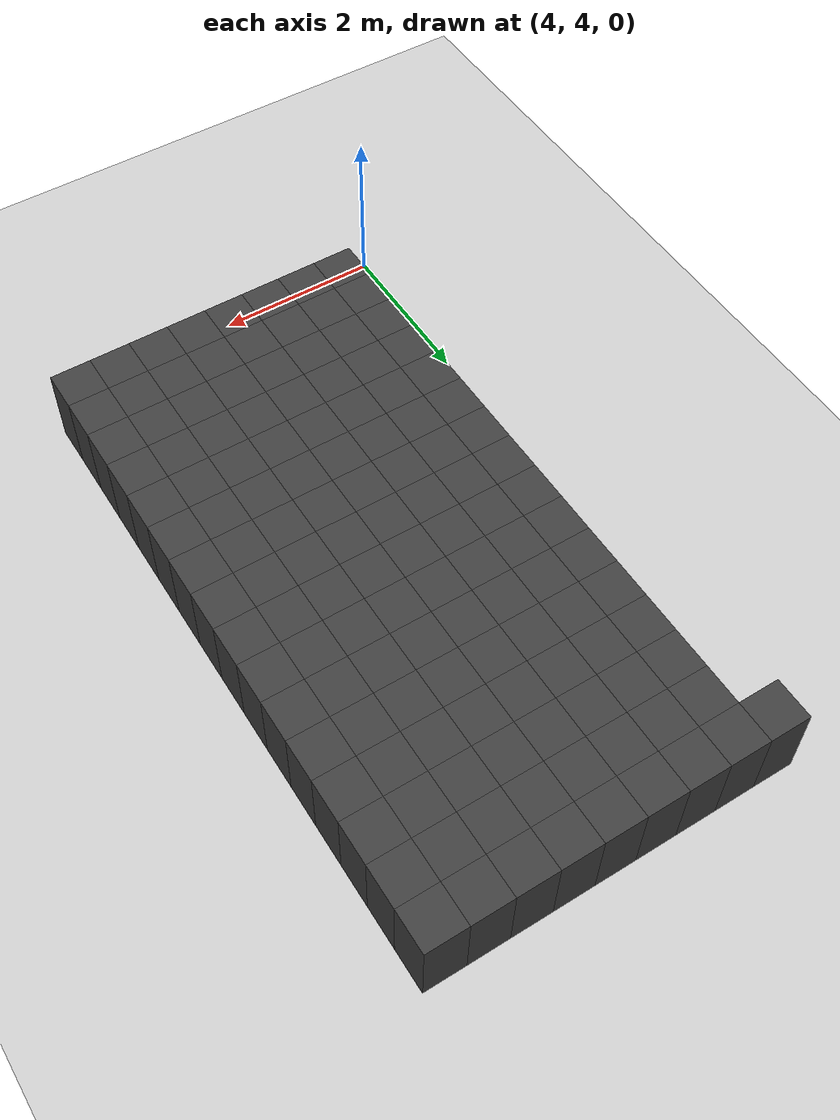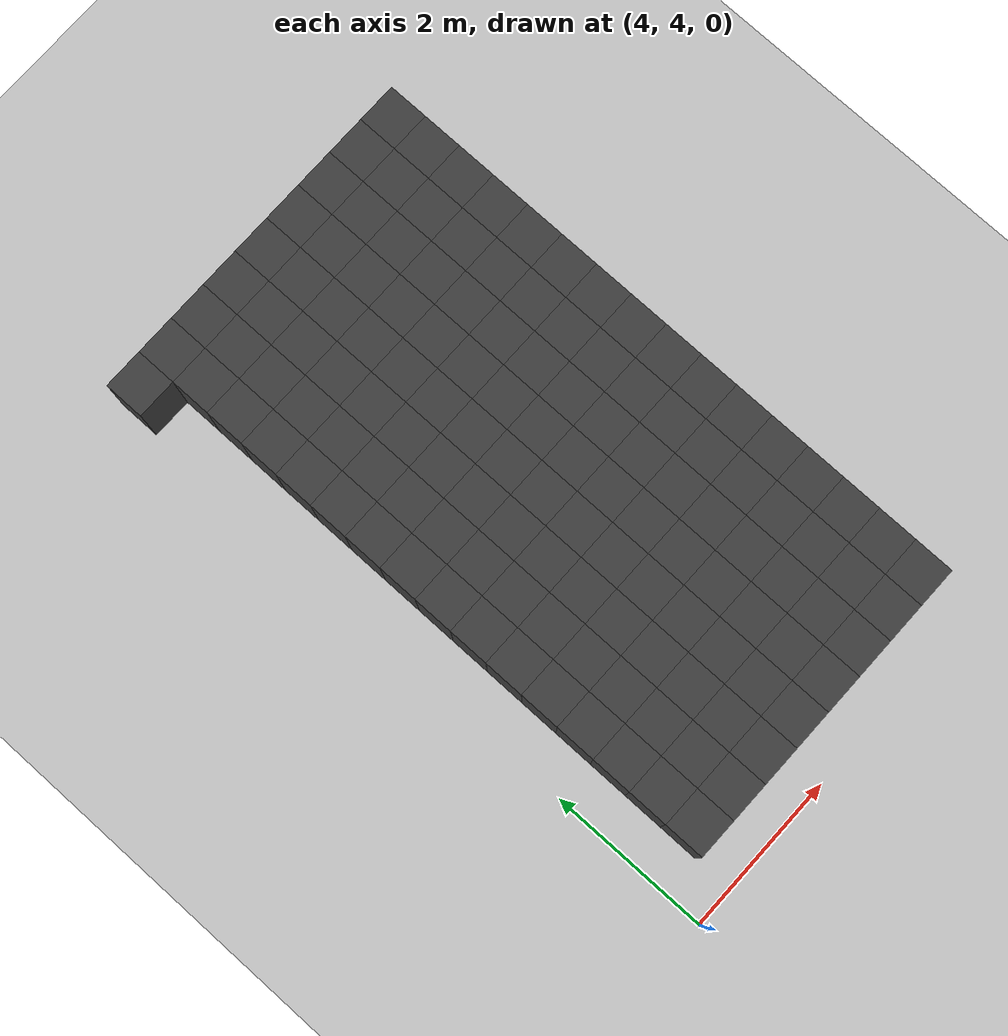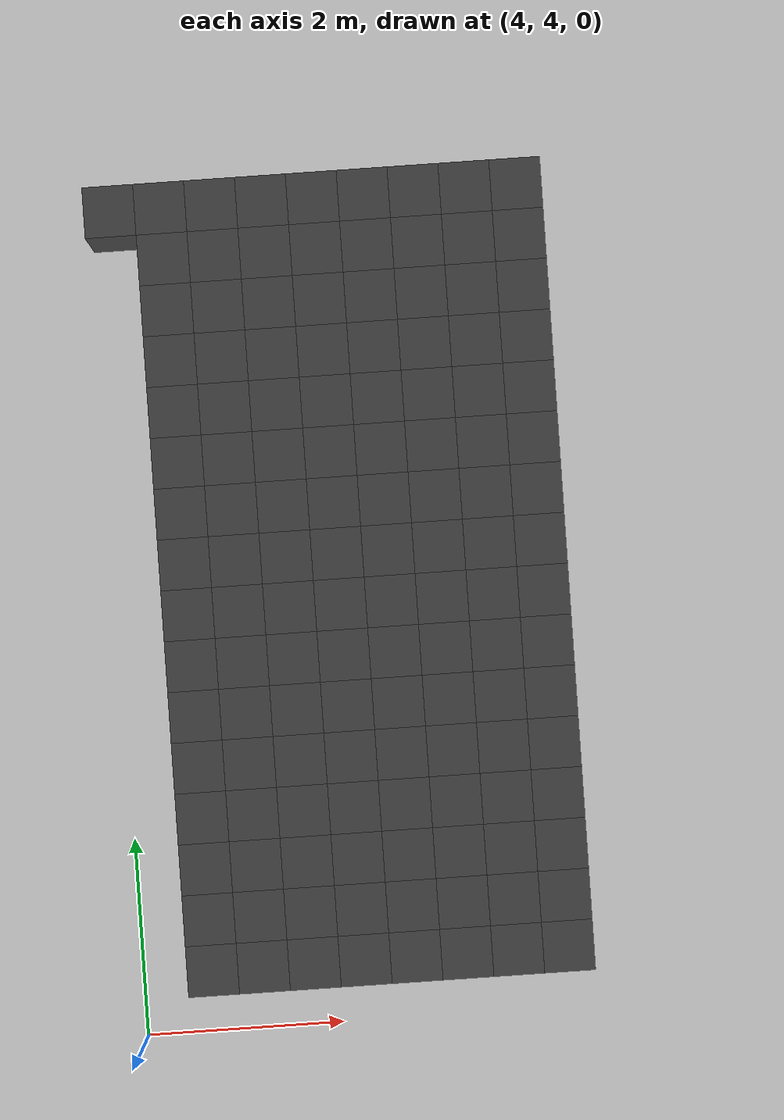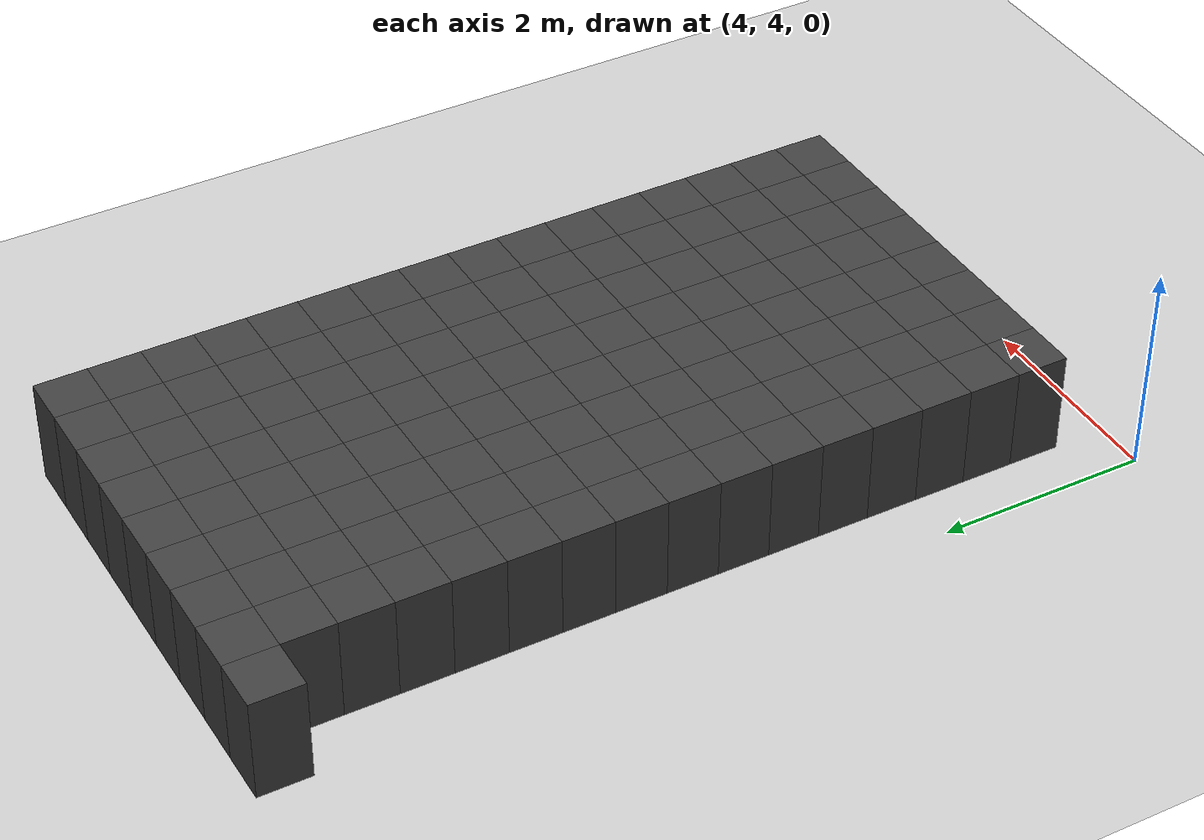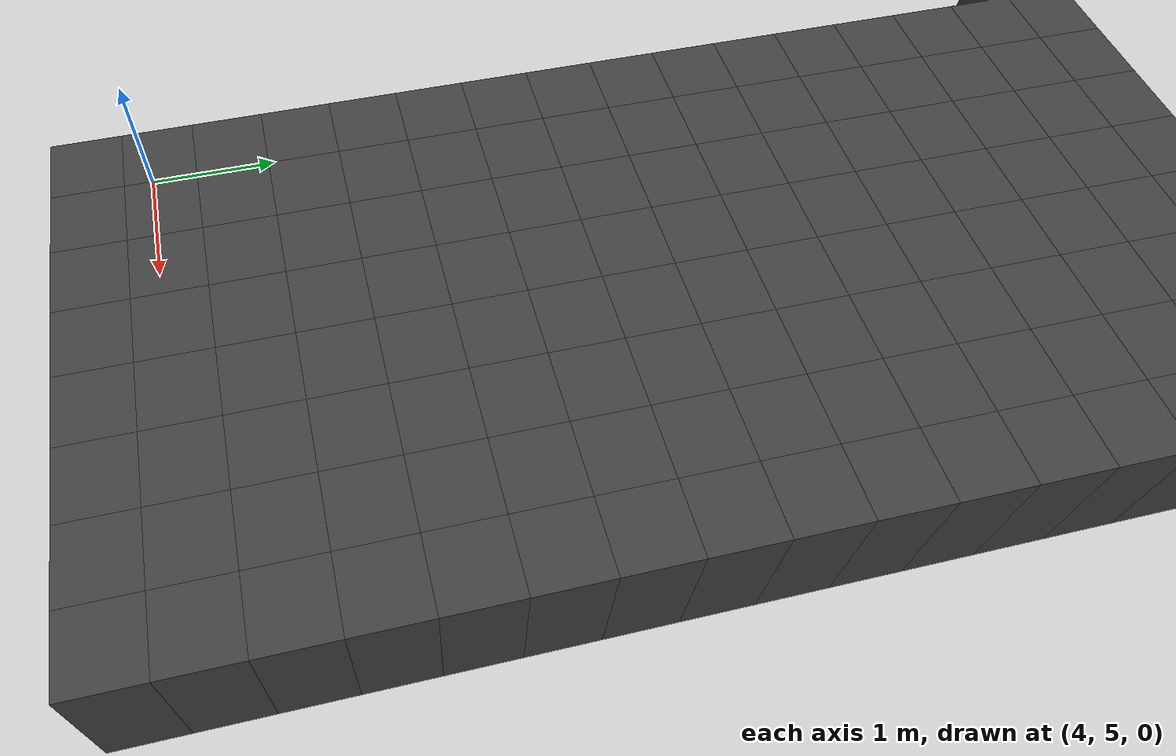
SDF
<sdf version="1.7">
 <world name="map_11515">
  <model name="ground_plane">
   <static>true</static>
   <link name="link">
    <collision name="collision">
     <geometry><plane><normal>0 0 1</normal><size>200 200</size></plane></geometry>
    </collision>
    <visual name="visual">
     <geometry><plane><normal>0 0 1</normal><size>200 200</size></plane></geometry>
     <material><ambient>0.8 0.8 0.8 1</ambient><diffuse>0.8 0.8 0.8 1</diffuse></material>
    </visual>
   </link>
  </model>
  <model name="maze_environment">
   <static>true</static>
   <link name="wall_33">
    <pose>4.250 12.250 0.500 0 0 0</pose>
    <collision name="col"><geometry><box><size>0.5 0.5 1.0</size></box></geometry></collision>
    <visual name="vis">
     <geometry><box><size>0.5 0.5 1.0</size></box></geometry>
     <material><ambient>0.15 0.15 0.15 1</ambient><diffuse>0.25 0.25 0.25 1</diffuse></material>
    </visual>
   </link>
   <link name="wall_34">
    <pose>4.750 12.250 0.500 0 0 0</pose>
    <collision name="col"><geometry><box><size>0.5 0.5 1.0</size></box></geometry></collision>
    <visual name="vis">
     <geometry><box><size>0.5 0.5 1.0</size></box></geometry>
     <material><ambient>0.15 0.15 0.15 1</ambient><diffuse>0.25 0.25 0.25 1</diffuse></material>
    </visual>
   </link>
   <link name="wall_35">
    <pose>5.250 12.250 0.500 0 0 0</pose>
    <collision name="col"><geometry><box><size>0.5 0.5 1.0</size></box></geometry></collision>
    <visual name="vis">
     <geometry><box><size>0.5 0.5 1.0</size></box></geometry>
     <material><ambient>0.15 0.15 0.15 1</ambient><diffuse>0.25 0.25 0.25 1</diffuse></material>
    </visual>
   </link>
   <link name="wall_36">
    <pose>5.750 12.250 0.500 0 0 0</pose>
    <collision name="col"><geometry><box><size>0.5 0.5 1.0</size></box></geometry></collision>
    <visual name="vis">
     <geometry><box><size>0.5 0.5 1.0</size></box></geometry>
     <material><ambient>0.15 0.15 0.15 1</ambient><diffuse>0.25 0.25 0.25 1</diffuse></material>
    </visual>
   </link>
   <link name="wall_37">
    <pose>6.250 12.250 0.500 0 0 0</pose>
    <collision name="col"><geometry><box><size>0.5 0.5 1.0</size></box></geometry></collision>
    <visual name="vis">
     <geometry><box><size>0.5 0.5 1.0</size></box></geometry>
     <material><ambient>0.15 0.15 0.15 1</ambient><diffuse>0.25 0.25 0.25 1</diffuse></material>
    </visual>
   </link>
   <link name="wall_38">
    <pose>6.750 12.250 0.500 0 0 0</pose>
    <collision name="col"><geometry><box><size>0.5 0.5 1.0</size></box></geometry></collision>
    <visual name="vis">
     <geometry><box><size>0.5 0.5 1.0</size></box></geometry>
     <material><ambient>0.15 0.15 0.15 1</ambient><diffuse>0.25 0.25 0.25 1</diffuse></material>
    </visual>
   </link>
   <link name="wall_39">
    <pose>7.250 12.250 0.500 0 0 0</pose>
    <collision name="col"><geometry><box><size>0.5 0.5 1.0</size></box></geometry></collision>
    <visual name="vis">
     <geometry><box><size>0.5 0.5 1.0</size></box></geometry>
     <material><ambient>0.15 0.15 0.15 1</ambient><diffuse>0.25 0.25 0.25 1</diffuse></material>
    </visual>
   </link>
   <link name="wall_40">
    <pose>7.750 12.250 0.500 0 0 0</pose>
    <collision name="col"><geometry><box><size>0.5 0.5 1.0</size></box></geometry></collision>
    <visual name="vis">
     <geometry><box><size>0.5 0.5 1.0</size></box></geometry>
     <material><ambient>0.15 0.15 0.15 1</ambient><diffuse>0.25 0.25 0.25 1</diffuse></material>
    </visual>
   </link>
   <link name="wall_41">
    <pose>8.250 12.250 0.500 0 0 0</pose>
    <collision name="col"><geometry><box><size>0.5 0.5 1.0</size></box></geometry></collision>
    <visual name="vis">
     <geometry><box><size>0.5 0.5 1.0</size></box></geometry>
     <material><ambient>0.15 0.15 0.15 1</ambient><diffuse>0.25 0.25 0.25 1</diffuse></material>
    </visual>
   </link>
   <link name="wall_81">
    <pose>4.750 11.750 0.500 0 0 0</pose>
    <collision name="col"><geometry><box><size>0.5 0.5 1.0</size></box></geometry></collision>
    <visual name="vis">
     <geometry><box><size>0.5 0.5 1.0</size></box></geometry>
     <material><ambient>0.15 0.15 0.15 1</ambient><diffuse>0.25 0.25 0.25 1</diffuse></material>
    </visual>
   </link>
   <link name="wall_82">
    <pose>5.250 11.750 0.500 0 0 0</pose>
    <collision name="col"><geometry><box><size>0.5 0.5 1.0</size></box></geometry></collision>
    <visual name="vis">
     <geometry><box><size>0.5 0.5 1.0</size></box></geometry>
     <material><ambient>0.15 0.15 0.15 1</ambient><diffuse>0.25 0.25 0.25 1</diffuse></material>
    </visual>
   </link>
   <link name="wall_83">
    <pose>5.750 11.750 0.500 0 0 0</pose>
    <collision name="col"><geometry><box><size>0.5 0.5 1.0</size></box></geometry></collision>
    <visual name="vis">
     <geometry><box><size>0.5 0.5 1.0</size></box></geometry>
     <material><ambient>0.15 0.15 0.15 1</ambient><diffuse>0.25 0.25 0.25 1</diffuse></material>
    </visual>
   </link>
   <link name="wall_84">
    <pose>6.250 11.750 0.500 0 0 0</pose>
    <collision name="col"><geometry><box><size>0.5 0.5 1.0</size></box></geometry></collision>
    <visual name="vis">
     <geometry><box><size>0.5 0.5 1.0</size></box></geometry>
     <material><ambient>0.15 0.15 0.15 1</ambient><diffuse>0.25 0.25 0.25 1</diffuse></material>
    </visual>
   </link>
   <link name="wall_85">
    <pose>6.750 11.750 0.500 0 0 0</pose>
    <collision name="col"><geometry><box><size>0.5 0.5 1.0</size></box></geometry></collision>
    <visual name="vis">
     <geometry><box><size>0.5 0.5 1.0</size></box></geometry>
     <material><ambient>0.15 0.15 0.15 1</ambient><diffuse>0.25 0.25 0.25 1</diffuse></material>
    </visual>
   </link>
   <link name="wall_86">
    <pose>7.250 11.750 0.500 0 0 0</pose>
    <collision name="col"><geometry><box><size>0.5 0.5 1.0</size></box></geometry></collision>
    <visual name="vis">
     <geometry><box><size>0.5 0.5 1.0</size></box></geometry>
     <material><ambient>0.15 0.15 0.15 1</ambient><diffuse>0.25 0.25 0.25 1</diffuse></material>
    </visual>
   </link>
   <link name="wall_87">
    <pose>7.750 11.750 0.500 0 0 0</pose>
    <collision name="col"><geometry><box><size>0.5 0.5 1.0</size></box></geometry></collision>
    <visual name="vis">
     <geometry><box><size>0.5 0.5 1.0</size></box></geometry>
     <material><ambient>0.15 0.15 0.15 1</ambient><diffuse>0.25 0.25 0.25 1</diffuse></material>
    </visual>
   </link>
   <link name="wall_88">
    <pose>8.250 11.750 0.500 0 0 0</pose>
    <collision name="col"><geometry><box><size>0.5 0.5 1.0</size></box></geometry></collision>
    <visual name="vis">
     <geometry><box><size>0.5 0.5 1.0</size></box></geometry>
     <material><ambient>0.15 0.15 0.15 1</ambient><diffuse>0.25 0.25 0.25 1</diffuse></material>
    </visual>
   </link>
   <link name="wall_128">
    <pose>4.750 11.250 0.500 0 0 0</pose>
    <collision name="col"><geometry><box><size>0.5 0.5 1.0</size></box></geometry></collision>
    <visual name="vis">
     <geometry><box><size>0.5 0.5 1.0</size></box></geometry>
     <material><ambient>0.15 0.15 0.15 1</ambient><diffuse>0.25 0.25 0.25 1</diffuse></material>
    </visual>
   </link>
   <link name="wall_129">
    <pose>5.250 11.250 0.500 0 0 0</pose>
    <collision name="col"><geometry><box><size>0.5 0.5 1.0</size></box></geometry></collision>
    <visual name="vis">
     <geometry><box><size>0.5 0.5 1.0</size></box></geometry>
     <material><ambient>0.15 0.15 0.15 1</ambient><diffuse>0.25 0.25 0.25 1</diffuse></material>
    </visual>
   </link>
   <link name="wall_130">
    <pose>5.750 11.250 0.500 0 0 0</pose>
    <collision name="col"><geometry><box><size>0.5 0.5 1.0</size></box></geometry></collision>
    <visual name="vis">
     <geometry><box><size>0.5 0.5 1.0</size></box></geometry>
     <material><ambient>0.15 0.15 0.15 1</ambient><diffuse>0.25 0.25 0.25 1</diffuse></material>
    </visual>
   </link>
   <link name="wall_131">
    <pose>6.250 11.250 0.500 0 0 0</pose>
    <collision name="col"><geometry><box><size>0.5 0.5 1.0</size></box></geometry></collision>
    <visual name="vis">
     <geometry><box><size>0.5 0.5 1.0</size></box></geometry>
     <material><ambient>0.15 0.15 0.15 1</ambient><diffuse>0.25 0.25 0.25 1</diffuse></material>
    </visual>
   </link>
   <link name="wall_132">
    <pose>6.750 11.250 0.500 0 0 0</pose>
    <collision name="col"><geometry><box><size>0.5 0.5 1.0</size></box></geometry></collision>
    <visual name="vis">
     <geometry><box><size>0.5 0.5 1.0</size></box></geometry>
     <material><ambient>0.15 0.15 0.15 1</ambient><diffuse>0.25 0.25 0.25 1</diffuse></material>
    </visual>
   </link>
   <link name="wall_133">
    <pose>7.250 11.250 0.500 0 0 0</pose>
    <collision name="col"><geometry><box><size>0.5 0.5 1.0</size></box></geometry></collision>
    <visual name="vis">
     <geometry><box><size>0.5 0.5 1.0</size></box></geometry>
     <material><ambient>0.15 0.15 0.15 1</ambient><diffuse>0.25 0.25 0.25 1</diffuse></material>
    </visual>
   </link>
   <link name="wall_134">
    <pose>7.750 11.250 0.500 0 0 0</pose>
    <collision name="col"><geometry><box><size>0.5 0.5 1.0</size></box></geometry></collision>
    <visual name="vis">
     <geometry><box><size>0.5 0.5 1.0</size></box></geometry>
     <material><ambient>0.15 0.15 0.15 1</ambient><diffuse>0.25 0.25 0.25 1</diffuse></material>
    </visual>
   </link>
   <link name="wall_135">
    <pose>8.250 11.250 0.500 0 0 0</pose>
    <collision name="col"><geometry><box><size>0.5 0.5 1.0</size></box></geometry></collision>
    <visual name="vis">
     <geometry><box><size>0.5 0.5 1.0</size></box></geometry>
     <material><ambient>0.15 0.15 0.15 1</ambient><diffuse>0.25 0.25 0.25 1</diffuse></material>
    </visual>
   </link>
   <link name="wall_175">
    <pose>4.750 10.750 0.500 0 0 0</pose>
    <collision name="col"><geometry><box><size>0.5 0.5 1.0</size></box></geometry></collision>
    <visual name="vis">
     <geometry><box><size>0.5 0.5 1.0</size></box></geometry>
     <material><ambient>0.15 0.15 0.15 1</ambient><diffuse>0.25 0.25 0.25 1</diffuse></material>
    </visual>
   </link>
   <link name="wall_176">
    <pose>5.250 10.750 0.500 0 0 0</pose>
    <collision name="col"><geometry><box><size>0.5 0.5 1.0</size></box></geometry></collision>
    <visual name="vis">
     <geometry><box><size>0.5 0.5 1.0</size></box></geometry>
     <material><ambient>0.15 0.15 0.15 1</ambient><diffuse>0.25 0.25 0.25 1</diffuse></material>
    </visual>
   </link>
   <link name="wall_177">
    <pose>5.750 10.750 0.500 0 0 0</pose>
    <collision name="col"><geometry><box><size>0.5 0.5 1.0</size></box></geometry></collision>
    <visual name="vis">
     <geometry><box><size>0.5 0.5 1.0</size></box></geometry>
     <material><ambient>0.15 0.15 0.15 1</ambient><diffuse>0.25 0.25 0.25 1</diffuse></material>
    </visual>
   </link>
   <link name="wall_178">
    <pose>6.250 10.750 0.500 0 0 0</pose>
    <collision name="col"><geometry><box><size>0.5 0.5 1.0</size></box></geometry></collision>
    <visual name="vis">
     <geometry><box><size>0.5 0.5 1.0</size></box></geometry>
     <material><ambient>0.15 0.15 0.15 1</ambient><diffuse>0.25 0.25 0.25 1</diffuse></material>
    </visual>
   </link>
   <link name="wall_179">
    <pose>6.750 10.750 0.500 0 0 0</pose>
    <collision name="col"><geometry><box><size>0.5 0.5 1.0</size></box></geometry></collision>
    <visual name="vis">
     <geometry><box><size>0.5 0.5 1.0</size></box></geometry>
     <material><ambient>0.15 0.15 0.15 1</ambient><diffuse>0.25 0.25 0.25 1</diffuse></material>
    </visual>
   </link>
   <link name="wall_180">
    <pose>7.250 10.750 0.500 0 0 0</pose>
    <collision name="col"><geometry><box><size>0.5 0.5 1.0</size></box></geometry></collision>
    <visual name="vis">
     <geometry><box><size>0.5 0.5 1.0</size></box></geometry>
     <material><ambient>0.15 0.15 0.15 1</ambient><diffuse>0.25 0.25 0.25 1</diffuse></material>
    </visual>
   </link>
   <link name="wall_181">
    <pose>7.750 10.750 0.500 0 0 0</pose>
    <collision name="col"><geometry><box><size>0.5 0.5 1.0</size></box></geometry></collision>
    <visual name="vis">
     <geometry><box><size>0.5 0.5 1.0</size></box></geometry>
     <material><ambient>0.15 0.15 0.15 1</ambient><diffuse>0.25 0.25 0.25 1</diffuse></material>
    </visual>
   </link>
   <link name="wall_182">
    <pose>8.250 10.750 0.500 0 0 0</pose>
    <collision name="col"><geometry><box><size>0.5 0.5 1.0</size></box></geometry></collision>
    <visual name="vis">
     <geometry><box><size>0.5 0.5 1.0</size></box></geometry>
     <material><ambient>0.15 0.15 0.15 1</ambient><diffuse>0.25 0.25 0.25 1</diffuse></material>
    </visual>
   </link>
   <link name="wall_224">
    <pose>4.750 10.250 0.500 0 0 0</pose>
    <collision name="col"><geometry><box><size>0.5 0.5 1.0</size></box></geometry></collision>
    <visual name="vis">
     <geometry><box><size>0.5 0.5 1.0</size></box></geometry>
     <material><ambient>0.15 0.15 0.15 1</ambient><diffuse>0.25 0.25 0.25 1</diffuse></material>
    </visual>
   </link>
   <link name="wall_225">
    <pose>5.250 10.250 0.500 0 0 0</pose>
    <collision name="col"><geometry><box><size>0.5 0.5 1.0</size></box></geometry></collision>
    <visual name="vis">
     <geometry><box><size>0.5 0.5 1.0</size></box></geometry>
     <material><ambient>0.15 0.15 0.15 1</ambient><diffuse>0.25 0.25 0.25 1</diffuse></material>
    </visual>
   </link>
   <link name="wall_226">
    <pose>5.750 10.250 0.500 0 0 0</pose>
    <collision name="col"><geometry><box><size>0.5 0.5 1.0</size></box></geometry></collision>
    <visual name="vis">
     <geometry><box><size>0.5 0.5 1.0</size></box></geometry>
     <material><ambient>0.15 0.15 0.15 1</ambient><diffuse>0.25 0.25 0.25 1</diffuse></material>
    </visual>
   </link>
   <link name="wall_227">
    <pose>6.250 10.250 0.500 0 0 0</pose>
    <collision name="col"><geometry><box><size>0.5 0.5 1.0</size></box></geometry></collision>
    <visual name="vis">
     <geometry><box><size>0.5 0.5 1.0</size></box></geometry>
     <material><ambient>0.15 0.15 0.15 1</ambient><diffuse>0.25 0.25 0.25 1</diffuse></material>
    </visual>
   </link>
   <link name="wall_228">
    <pose>6.750 10.250 0.500 0 0 0</pose>
    <collision name="col"><geometry><box><size>0.5 0.5 1.0</size></box></geometry></collision>
    <visual name="vis">
     <geometry><box><size>0.5 0.5 1.0</size></box></geometry>
     <material><ambient>0.15 0.15 0.15 1</ambient><diffuse>0.25 0.25 0.25 1</diffuse></material>
    </visual>
   </link>
   <link name="wall_229">
    <pose>7.250 10.250 0.500 0 0 0</pose>
    <collision name="col"><geometry><box><size>0.5 0.5 1.0</size></box></geometry></collision>
    <visual name="vis">
     <geometry><box><size>0.5 0.5 1.0</size></box></geometry>
     <material><ambient>0.15 0.15 0.15 1</ambient><diffuse>0.25 0.25 0.25 1</diffuse></material>
    </visual>
   </link>
   <link name="wall_230">
    <pose>7.750 10.250 0.500 0 0 0</pose>
    <collision name="col"><geometry><box><size>0.5 0.5 1.0</size></box></geometry></collision>
    <visual name="vis">
     <geometry><box><size>0.5 0.5 1.0</size></box></geometry>
     <material><ambient>0.15 0.15 0.15 1</ambient><diffuse>0.25 0.25 0.25 1</diffuse></material>
    </visual>
   </link>
   <link name="wall_231">
    <pose>8.250 10.250 0.500 0 0 0</pose>
    <collision name="col"><geometry><box><size>0.5 0.5 1.0</size></box></geometry></collision>
    <visual name="vis">
     <geometry><box><size>0.5 0.5 1.0</size></box></geometry>
     <material><ambient>0.15 0.15 0.15 1</ambient><diffuse>0.25 0.25 0.25 1</diffuse></material>
    </visual>
   </link>
   <link name="wall_267">
    <pose>4.750 9.750 0.500 0 0 0</pose>
    <collision name="col"><geometry><box><size>0.5 0.5 1.0</size></box></geometry></collision>
    <visual name="vis">
     <geometry><box><size>0.5 0.5 1.0</size></box></geometry>
     <material><ambient>0.15 0.15 0.15 1</ambient><diffuse>0.25 0.25 0.25 1</diffuse></material>
    </visual>
   </link>
   <link name="wall_268">
    <pose>5.250 9.750 0.500 0 0 0</pose>
    <collision name="col"><geometry><box><size>0.5 0.5 1.0</size></box></geometry></collision>
    <visual name="vis">
     <geometry><box><size>0.5 0.5 1.0</size></box></geometry>
     <material><ambient>0.15 0.15 0.15 1</ambient><diffuse>0.25 0.25 0.25 1</diffuse></material>
    </visual>
   </link>
   <link name="wall_269">
    <pose>5.750 9.750 0.500 0 0 0</pose>
    <collision name="col"><geometry><box><size>0.5 0.5 1.0</size></box></geometry></collision>
    <visual name="vis">
     <geometry><box><size>0.5 0.5 1.0</size></box></geometry>
     <material><ambient>0.15 0.15 0.15 1</ambient><diffuse>0.25 0.25 0.25 1</diffuse></material>
    </visual>
   </link>
   <link name="wall_270">
    <pose>6.250 9.750 0.500 0 0 0</pose>
    <collision name="col"><geometry><box><size>0.5 0.5 1.0</size></box></geometry></collision>
    <visual name="vis">
     <geometry><box><size>0.5 0.5 1.0</size></box></geometry>
     <material><ambient>0.15 0.15 0.15 1</ambient><diffuse>0.25 0.25 0.25 1</diffuse></material>
    </visual>
   </link>
   <link name="wall_271">
    <pose>6.750 9.750 0.500 0 0 0</pose>
    <collision name="col"><geometry><box><size>0.5 0.5 1.0</size></box></geometry></collision>
    <visual name="vis">
     <geometry><box><size>0.5 0.5 1.0</size></box></geometry>
     <material><ambient>0.15 0.15 0.15 1</ambient><diffuse>0.25 0.25 0.25 1</diffuse></material>
    </visual>
   </link>
   <link name="wall_272">
    <pose>7.250 9.750 0.500 0 0 0</pose>
    <collision name="col"><geometry><box><size>0.5 0.5 1.0</size></box></geometry></collision>
    <visual name="vis">
     <geometry><box><size>0.5 0.5 1.0</size></box></geometry>
     <material><ambient>0.15 0.15 0.15 1</ambient><diffuse>0.25 0.25 0.25 1</diffuse></material>
    </visual>
   </link>
   <link name="wall_273">
    <pose>7.750 9.750 0.500 0 0 0</pose>
    <collision name="col"><geometry><box><size>0.5 0.5 1.0</size></box></geometry></collision>
    <visual name="vis">
     <geometry><box><size>0.5 0.5 1.0</size></box></geometry>
     <material><ambient>0.15 0.15 0.15 1</ambient><diffuse>0.25 0.25 0.25 1</diffuse></material>
    </visual>
   </link>
   <link name="wall_274">
    <pose>8.250 9.750 0.500 0 0 0</pose>
    <collision name="col"><geometry><box><size>0.5 0.5 1.0</size></box></geometry></collision>
    <visual name="vis">
     <geometry><box><size>0.5 0.5 1.0</size></box></geometry>
     <material><ambient>0.15 0.15 0.15 1</ambient><diffuse>0.25 0.25 0.25 1</diffuse></material>
    </visual>
   </link>
   <link name="wall_310">
    <pose>4.750 9.250 0.500 0 0 0</pose>
    <collision name="col"><geometry><box><size>0.5 0.5 1.0</size></box></geometry></collision>
    <visual name="vis">
     <geometry><box><size>0.5 0.5 1.0</size></box></geometry>
     <material><ambient>0.15 0.15 0.15 1</ambient><diffuse>0.25 0.25 0.25 1</diffuse></material>
    </visual>
   </link>
   <link name="wall_311">
    <pose>5.250 9.250 0.500 0 0 0</pose>
    <collision name="col"><geometry><box><size>0.5 0.5 1.0</size></box></geometry></collision>
    <visual name="vis">
     <geometry><box><size>0.5 0.5 1.0</size></box></geometry>
     <material><ambient>0.15 0.15 0.15 1</ambient><diffuse>0.25 0.25 0.25 1</diffuse></material>
    </visual>
   </link>
   <link name="wall_312">
    <pose>5.750 9.250 0.500 0 0 0</pose>
    <collision name="col"><geometry><box><size>0.5 0.5 1.0</size></box></geometry></collision>
    <visual name="vis">
     <geometry><box><size>0.5 0.5 1.0</size></box></geometry>
     <material><ambient>0.15 0.15 0.15 1</ambient><diffuse>0.25 0.25 0.25 1</diffuse></material>
    </visual>
   </link>
   <link name="wall_313">
    <pose>6.250 9.250 0.500 0 0 0</pose>
    <collision name="col"><geometry><box><size>0.5 0.5 1.0</size></box></geometry></collision>
    <visual name="vis">
     <geometry><box><size>0.5 0.5 1.0</size></box></geometry>
     <material><ambient>0.15 0.15 0.15 1</ambient><diffuse>0.25 0.25 0.25 1</diffuse></material>
    </visual>
   </link>
   <link name="wall_314">
    <pose>6.750 9.250 0.500 0 0 0</pose>
    <collision name="col"><geometry><box><size>0.5 0.5 1.0</size></box></geometry></collision>
    <visual name="vis">
     <geometry><box><size>0.5 0.5 1.0</size></box></geometry>
     <material><ambient>0.15 0.15 0.15 1</ambient><diffuse>0.25 0.25 0.25 1</diffuse></material>
    </visual>
   </link>
   <link name="wall_315">
    <pose>7.250 9.250 0.500 0 0 0</pose>
    <collision name="col"><geometry><box><size>0.5 0.5 1.0</size></box></geometry></collision>
    <visual name="vis">
     <geometry><box><size>0.5 0.5 1.0</size></box></geometry>
     <material><ambient>0.15 0.15 0.15 1</ambient><diffuse>0.25 0.25 0.25 1</diffuse></material>
    </visual>
   </link>
   <link name="wall_316">
    <pose>7.750 9.250 0.500 0 0 0</pose>
    <collision name="col"><geometry><box><size>0.5 0.5 1.0</size></box></geometry></collision>
    <visual name="vis">
     <geometry><box><size>0.5 0.5 1.0</size></box></geometry>
     <material><ambient>0.15 0.15 0.15 1</ambient><diffuse>0.25 0.25 0.25 1</diffuse></material>
    </visual>
   </link>
   <link name="wall_317">
    <pose>8.250 9.250 0.500 0 0 0</pose>
    <collision name="col"><geometry><box><size>0.5 0.5 1.0</size></box></geometry></collision>
    <visual name="vis">
     <geometry><box><size>0.5 0.5 1.0</size></box></geometry>
     <material><ambient>0.15 0.15 0.15 1</ambient><diffuse>0.25 0.25 0.25 1</diffuse></material>
    </visual>
   </link>
   <link name="wall_338">
    <pose>4.750 8.750 0.500 0 0 0</pose>
    <collision name="col"><geometry><box><size>0.5 0.5 1.0</size></box></geometry></collision>
    <visual name="vis">
     <geometry><box><size>0.5 0.5 1.0</size></box></geometry>
     <material><ambient>0.15 0.15 0.15 1</ambient><diffuse>0.25 0.25 0.25 1</diffuse></material>
    </visual>
   </link>
   <link name="wall_339">
    <pose>5.250 8.750 0.500 0 0 0</pose>
    <collision name="col"><geometry><box><size>0.5 0.5 1.0</size></box></geometry></collision>
    <visual name="vis">
     <geometry><box><size>0.5 0.5 1.0</size></box></geometry>
     <material><ambient>0.15 0.15 0.15 1</ambient><diffuse>0.25 0.25 0.25 1</diffuse></material>
    </visual>
   </link>
   <link name="wall_340">
    <pose>5.750 8.750 0.500 0 0 0</pose>
    <collision name="col"><geometry><box><size>0.5 0.5 1.0</size></box></geometry></collision>
    <visual name="vis">
     <geometry><box><size>0.5 0.5 1.0</size></box></geometry>
     <material><ambient>0.15 0.15 0.15 1</ambient><diffuse>0.25 0.25 0.25 1</diffuse></material>
    </visual>
   </link>
   <link name="wall_341">
    <pose>6.250 8.750 0.500 0 0 0</pose>
    <collision name="col"><geometry><box><size>0.5 0.5 1.0</size></box></geometry></collision>
    <visual name="vis">
     <geometry><box><size>0.5 0.5 1.0</size></box></geometry>
     <material><ambient>0.15 0.15 0.15 1</ambient><diffuse>0.25 0.25 0.25 1</diffuse></material>
    </visual>
   </link>
   <link name="wall_342">
    <pose>6.750 8.750 0.500 0 0 0</pose>
    <collision name="col"><geometry><box><size>0.5 0.5 1.0</size></box></geometry></collision>
    <visual name="vis">
     <geometry><box><size>0.5 0.5 1.0</size></box></geometry>
     <material><ambient>0.15 0.15 0.15 1</ambient><diffuse>0.25 0.25 0.25 1</diffuse></material>
    </visual>
   </link>
   <link name="wall_343">
    <pose>7.250 8.750 0.500 0 0 0</pose>
    <collision name="col"><geometry><box><size>0.5 0.5 1.0</size></box></geometry></collision>
    <visual name="vis">
     <geometry><box><size>0.5 0.5 1.0</size></box></geometry>
     <material><ambient>0.15 0.15 0.15 1</ambient><diffuse>0.25 0.25 0.25 1</diffuse></material>
    </visual>
   </link>
   <link name="wall_344">
    <pose>7.750 8.750 0.500 0 0 0</pose>
    <collision name="col"><geometry><box><size>0.5 0.5 1.0</size></box></geometry></collision>
    <visual name="vis">
     <geometry><box><size>0.5 0.5 1.0</size></box></geometry>
     <material><ambient>0.15 0.15 0.15 1</ambient><diffuse>0.25 0.25 0.25 1</diffuse></material>
    </visual>
   </link>
   <link name="wall_345">
    <pose>8.250 8.750 0.500 0 0 0</pose>
    <collision name="col"><geometry><box><size>0.5 0.5 1.0</size></box></geometry></collision>
    <visual name="vis">
     <geometry><box><size>0.5 0.5 1.0</size></box></geometry>
     <material><ambient>0.15 0.15 0.15 1</ambient><diffuse>0.25 0.25 0.25 1</diffuse></material>
    </visual>
   </link>
   <link name="wall_378">
    <pose>4.750 8.250 0.500 0 0 0</pose>
    <collision name="col"><geometry><box><size>0.5 0.5 1.0</size></box></geometry></collision>
    <visual name="vis">
     <geometry><box><size>0.5 0.5 1.0</size></box></geometry>
     <material><ambient>0.15 0.15 0.15 1</ambient><diffuse>0.25 0.25 0.25 1</diffuse></material>
    </visual>
   </link>
   <link name="wall_379">
    <pose>5.250 8.250 0.500 0 0 0</pose>
    <collision name="col"><geometry><box><size>0.5 0.5 1.0</size></box></geometry></collision>
    <visual name="vis">
     <geometry><box><size>0.5 0.5 1.0</size></box></geometry>
     <material><ambient>0.15 0.15 0.15 1</ambient><diffuse>0.25 0.25 0.25 1</diffuse></material>
    </visual>
   </link>
   <link name="wall_380">
    <pose>5.750 8.250 0.500 0 0 0</pose>
    <collision name="col"><geometry><box><size>0.5 0.5 1.0</size></box></geometry></collision>
    <visual name="vis">
     <geometry><box><size>0.5 0.5 1.0</size></box></geometry>
     <material><ambient>0.15 0.15 0.15 1</ambient><diffuse>0.25 0.25 0.25 1</diffuse></material>
    </visual>
   </link>
   <link name="wall_381">
    <pose>6.250 8.250 0.500 0 0 0</pose>
    <collision name="col"><geometry><box><size>0.5 0.5 1.0</size></box></geometry></collision>
    <visual name="vis">
     <geometry><box><size>0.5 0.5 1.0</size></box></geometry>
     <material><ambient>0.15 0.15 0.15 1</ambient><diffuse>0.25 0.25 0.25 1</diffuse></material>
    </visual>
   </link>
   <link name="wall_382">
    <pose>6.750 8.250 0.500 0 0 0</pose>
    <collision name="col"><geometry><box><size>0.5 0.5 1.0</size></box></geometry></collision>
    <visual name="vis">
     <geometry><box><size>0.5 0.5 1.0</size></box></geometry>
     <material><ambient>0.15 0.15 0.15 1</ambient><diffuse>0.25 0.25 0.25 1</diffuse></material>
    </visual>
   </link>
   <link name="wall_383">
    <pose>7.250 8.250 0.500 0 0 0</pose>
    <collision name="col"><geometry><box><size>0.5 0.5 1.0</size></box></geometry></collision>
    <visual name="vis">
     <geometry><box><size>0.5 0.5 1.0</size></box></geometry>
     <material><ambient>0.15 0.15 0.15 1</ambient><diffuse>0.25 0.25 0.25 1</diffuse></material>
    </visual>
   </link>
   <link name="wall_384">
    <pose>7.750 8.250 0.500 0 0 0</pose>
    <collision name="col"><geometry><box><size>0.5 0.5 1.0</size></box></geometry></collision>
    <visual name="vis">
     <geometry><box><size>0.5 0.5 1.0</size></box></geometry>
     <material><ambient>0.15 0.15 0.15 1</ambient><diffuse>0.25 0.25 0.25 1</diffuse></material>
    </visual>
   </link>
   <link name="wall_385">
    <pose>8.250 8.250 0.500 0 0 0</pose>
    <collision name="col"><geometry><box><size>0.5 0.5 1.0</size></box></geometry></collision>
    <visual name="vis">
     <geometry><box><size>0.5 0.5 1.0</size></box></geometry>
     <material><ambient>0.15 0.15 0.15 1</ambient><diffuse>0.25 0.25 0.25 1</diffuse></material>
    </visual>
   </link>
   <link name="wall_416">
    <pose>4.750 7.750 0.500 0 0 0</pose>
    <collision name="col"><geometry><box><size>0.5 0.5 1.0</size></box></geometry></collision>
    <visual name="vis">
     <geometry><box><size>0.5 0.5 1.0</size></box></geometry>
     <material><ambient>0.15 0.15 0.15 1</ambient><diffuse>0.25 0.25 0.25 1</diffuse></material>
    </visual>
   </link>
   <link name="wall_417">
    <pose>5.250 7.750 0.500 0 0 0</pose>
    <collision name="col"><geometry><box><size>0.5 0.5 1.0</size></box></geometry></collision>
    <visual name="vis">
     <geometry><box><size>0.5 0.5 1.0</size></box></geometry>
     <material><ambient>0.15 0.15 0.15 1</ambient><diffuse>0.25 0.25 0.25 1</diffuse></material>
    </visual>
   </link>
   <link name="wall_418">
    <pose>5.750 7.750 0.500 0 0 0</pose>
    <collision name="col"><geometry><box><size>0.5 0.5 1.0</size></box></geometry></collision>
    <visual name="vis">
     <geometry><box><size>0.5 0.5 1.0</size></box></geometry>
     <material><ambient>0.15 0.15 0.15 1</ambient><diffuse>0.25 0.25 0.25 1</diffuse></material>
    </visual>
   </link>
   <link name="wall_419">
    <pose>6.250 7.750 0.500 0 0 0</pose>
    <collision name="col"><geometry><box><size>0.5 0.5 1.0</size></box></geometry></collision>
    <visual name="vis">
     <geometry><box><size>0.5 0.5 1.0</size></box></geometry>
     <material><ambient>0.15 0.15 0.15 1</ambient><diffuse>0.25 0.25 0.25 1</diffuse></material>
    </visual>
   </link>
   <link name="wall_420">
    <pose>6.750 7.750 0.500 0 0 0</pose>
    <collision name="col"><geometry><box><size>0.5 0.5 1.0</size></box></geometry></collision>
    <visual name="vis">
     <geometry><box><size>0.5 0.5 1.0</size></box></geometry>
     <material><ambient>0.15 0.15 0.15 1</ambient><diffuse>0.25 0.25 0.25 1</diffuse></material>
    </visual>
   </link>
   <link name="wall_421">
    <pose>7.250 7.750 0.500 0 0 0</pose>
    <collision name="col"><geometry><box><size>0.5 0.5 1.0</size></box></geometry></collision>
    <visual name="vis">
     <geometry><box><size>0.5 0.5 1.0</size></box></geometry>
     <material><ambient>0.15 0.15 0.15 1</ambient><diffuse>0.25 0.25 0.25 1</diffuse></material>
    </visual>
   </link>
   <link name="wall_422">
    <pose>7.750 7.750 0.500 0 0 0</pose>
    <collision name="col"><geometry><box><size>0.5 0.5 1.0</size></box></geometry></collision>
    <visual name="vis">
     <geometry><box><size>0.5 0.5 1.0</size></box></geometry>
     <material><ambient>0.15 0.15 0.15 1</ambient><diffuse>0.25 0.25 0.25 1</diffuse></material>
    </visual>
   </link>
   <link name="wall_423">
    <pose>8.250 7.750 0.500 0 0 0</pose>
    <collision name="col"><geometry><box><size>0.5 0.5 1.0</size></box></geometry></collision>
    <visual name="vis">
     <geometry><box><size>0.5 0.5 1.0</size></box></geometry>
     <material><ambient>0.15 0.15 0.15 1</ambient><diffuse>0.25 0.25 0.25 1</diffuse></material>
    </visual>
   </link>
   <link name="wall_455">
    <pose>4.750 7.250 0.500 0 0 0</pose>
    <collision name="col"><geometry><box><size>0.5 0.5 1.0</size></box></geometry></collision>
    <visual name="vis">
     <geometry><box><size>0.5 0.5 1.0</size></box></geometry>
     <material><ambient>0.15 0.15 0.15 1</ambient><diffuse>0.25 0.25 0.25 1</diffuse></material>
    </visual>
   </link>
   <link name="wall_456">
    <pose>5.250 7.250 0.500 0 0 0</pose>
    <collision name="col"><geometry><box><size>0.5 0.5 1.0</size></box></geometry></collision>
    <visual name="vis">
     <geometry><box><size>0.5 0.5 1.0</size></box></geometry>
     <material><ambient>0.15 0.15 0.15 1</ambient><diffuse>0.25 0.25 0.25 1</diffuse></material>
    </visual>
   </link>
   <link name="wall_457">
    <pose>5.750 7.250 0.500 0 0 0</pose>
    <collision name="col"><geometry><box><size>0.5 0.5 1.0</size></box></geometry></collision>
    <visual name="vis">
     <geometry><box><size>0.5 0.5 1.0</size></box></geometry>
     <material><ambient>0.15 0.15 0.15 1</ambient><diffuse>0.25 0.25 0.25 1</diffuse></material>
    </visual>
   </link>
   <link name="wall_458">
    <pose>6.250 7.250 0.500 0 0 0</pose>
    <collision name="col"><geometry><box><size>0.5 0.5 1.0</size></box></geometry></collision>
    <visual name="vis">
     <geometry><box><size>0.5 0.5 1.0</size></box></geometry>
     <material><ambient>0.15 0.15 0.15 1</ambient><diffuse>0.25 0.25 0.25 1</diffuse></material>
    </visual>
   </link>
   <link name="wall_459">
    <pose>6.750 7.250 0.500 0 0 0</pose>
    <collision name="col"><geometry><box><size>0.5 0.5 1.0</size></box></geometry></collision>
    <visual name="vis">
     <geometry><box><size>0.5 0.5 1.0</size></box></geometry>
     <material><ambient>0.15 0.15 0.15 1</ambient><diffuse>0.25 0.25 0.25 1</diffuse></material>
    </visual>
   </link>
   <link name="wall_460">
    <pose>7.250 7.250 0.500 0 0 0</pose>
    <collision name="col"><geometry><box><size>0.5 0.5 1.0</size></box></geometry></collision>
    <visual name="vis">
     <geometry><box><size>0.5 0.5 1.0</size></box></geometry>
     <material><ambient>0.15 0.15 0.15 1</ambient><diffuse>0.25 0.25 0.25 1</diffuse></material>
    </visual>
   </link>
   <link name="wall_461">
    <pose>7.750 7.250 0.500 0 0 0</pose>
    <collision name="col"><geometry><box><size>0.5 0.5 1.0</size></box></geometry></collision>
    <visual name="vis">
     <geometry><box><size>0.5 0.5 1.0</size></box></geometry>
     <material><ambient>0.15 0.15 0.15 1</ambient><diffuse>0.25 0.25 0.25 1</diffuse></material>
    </visual>
   </link>
   <link name="wall_462">
    <pose>8.250 7.250 0.500 0 0 0</pose>
    <collision name="col"><geometry><box><size>0.5 0.5 1.0</size></box></geometry></collision>
    <visual name="vis">
     <geometry><box><size>0.5 0.5 1.0</size></box></geometry>
     <material><ambient>0.15 0.15 0.15 1</ambient><diffuse>0.25 0.25 0.25 1</diffuse></material>
    </visual>
   </link>
   <link name="wall_498">
    <pose>4.750 6.750 0.500 0 0 0</pose>
    <collision name="col"><geometry><box><size>0.5 0.5 1.0</size></box></geometry></collision>
    <visual name="vis">
     <geometry><box><size>0.5 0.5 1.0</size></box></geometry>
     <material><ambient>0.15 0.15 0.15 1</ambient><diffuse>0.25 0.25 0.25 1</diffuse></material>
    </visual>
   </link>
   <link name="wall_499">
    <pose>5.250 6.750 0.500 0 0 0</pose>
    <collision name="col"><geometry><box><size>0.5 0.5 1.0</size></box></geometry></collision>
    <visual name="vis">
     <geometry><box><size>0.5 0.5 1.0</size></box></geometry>
     <material><ambient>0.15 0.15 0.15 1</ambient><diffuse>0.25 0.25 0.25 1</diffuse></material>
    </visual>
   </link>
   <link name="wall_500">
    <pose>5.750 6.750 0.500 0 0 0</pose>
    <collision name="col"><geometry><box><size>0.5 0.5 1.0</size></box></geometry></collision>
    <visual name="vis">
     <geometry><box><size>0.5 0.5 1.0</size></box></geometry>
     <material><ambient>0.15 0.15 0.15 1</ambient><diffuse>0.25 0.25 0.25 1</diffuse></material>
    </visual>
   </link>
   <link name="wall_501">
    <pose>6.250 6.750 0.500 0 0 0</pose>
    <collision name="col"><geometry><box><size>0.5 0.5 1.0</size></box></geometry></collision>
    <visual name="vis">
     <geometry><box><size>0.5 0.5 1.0</size></box></geometry>
     <material><ambient>0.15 0.15 0.15 1</ambient><diffuse>0.25 0.25 0.25 1</diffuse></material>
    </visual>
   </link>
   <link name="wall_502">
    <pose>6.750 6.750 0.500 0 0 0</pose>
    <collision name="col"><geometry><box><size>0.5 0.5 1.0</size></box></geometry></collision>
    <visual name="vis">
     <geometry><box><size>0.5 0.5 1.0</size></box></geometry>
     <material><ambient>0.15 0.15 0.15 1</ambient><diffuse>0.25 0.25 0.25 1</diffuse></material>
    </visual>
   </link>
   <link name="wall_503">
    <pose>7.250 6.750 0.500 0 0 0</pose>
    <collision name="col"><geometry><box><size>0.5 0.5 1.0</size></box></geometry></collision>
    <visual name="vis">
     <geometry><box><size>0.5 0.5 1.0</size></box></geometry>
     <material><ambient>0.15 0.15 0.15 1</ambient><diffuse>0.25 0.25 0.25 1</diffuse></material>
    </visual>
   </link>
   <link name="wall_504">
    <pose>7.750 6.750 0.500 0 0 0</pose>
    <collision name="col"><geometry><box><size>0.5 0.5 1.0</size></box></geometry></collision>
    <visual name="vis">
     <geometry><box><size>0.5 0.5 1.0</size></box></geometry>
     <material><ambient>0.15 0.15 0.15 1</ambient><diffuse>0.25 0.25 0.25 1</diffuse></material>
    </visual>
   </link>
   <link name="wall_505">
    <pose>8.250 6.750 0.500 0 0 0</pose>
    <collision name="col"><geometry><box><size>0.5 0.5 1.0</size></box></geometry></collision>
    <visual name="vis">
     <geometry><box><size>0.5 0.5 1.0</size></box></geometry>
     <material><ambient>0.15 0.15 0.15 1</ambient><diffuse>0.25 0.25 0.25 1</diffuse></material>
    </visual>
   </link>
   <link name="wall_541">
    <pose>4.750 6.250 0.500 0 0 0</pose>
    <collision name="col"><geometry><box><size>0.5 0.5 1.0</size></box></geometry></collision>
    <visual name="vis">
     <geometry><box><size>0.5 0.5 1.0</size></box></geometry>
     <material><ambient>0.15 0.15 0.15 1</ambient><diffuse>0.25 0.25 0.25 1</diffuse></material>
    </visual>
   </link>
   <link name="wall_542">
    <pose>5.250 6.250 0.500 0 0 0</pose>
    <collision name="col"><geometry><box><size>0.5 0.5 1.0</size></box></geometry></collision>
    <visual name="vis">
     <geometry><box><size>0.5 0.5 1.0</size></box></geometry>
     <material><ambient>0.15 0.15 0.15 1</ambient><diffuse>0.25 0.25 0.25 1</diffuse></material>
    </visual>
   </link>
   <link name="wall_543">
    <pose>5.750 6.250 0.500 0 0 0</pose>
    <collision name="col"><geometry><box><size>0.5 0.5 1.0</size></box></geometry></collision>
    <visual name="vis">
     <geometry><box><size>0.5 0.5 1.0</size></box></geometry>
     <material><ambient>0.15 0.15 0.15 1</ambient><diffuse>0.25 0.25 0.25 1</diffuse></material>
    </visual>
   </link>
   <link name="wall_544">
    <pose>6.250 6.250 0.500 0 0 0</pose>
    <collision name="col"><geometry><box><size>0.5 0.5 1.0</size></box></geometry></collision>
    <visual name="vis">
     <geometry><box><size>0.5 0.5 1.0</size></box></geometry>
     <material><ambient>0.15 0.15 0.15 1</ambient><diffuse>0.25 0.25 0.25 1</diffuse></material>
    </visual>
   </link>
   <link name="wall_545">
    <pose>6.750 6.250 0.500 0 0 0</pose>
    <collision name="col"><geometry><box><size>0.5 0.5 1.0</size></box></geometry></collision>
    <visual name="vis">
     <geometry><box><size>0.5 0.5 1.0</size></box></geometry>
     <material><ambient>0.15 0.15 0.15 1</ambient><diffuse>0.25 0.25 0.25 1</diffuse></material>
    </visual>
   </link>
   <link name="wall_546">
    <pose>7.250 6.250 0.500 0 0 0</pose>
    <collision name="col"><geometry><box><size>0.5 0.5 1.0</size></box></geometry></collision>
    <visual name="vis">
     <geometry><box><size>0.5 0.5 1.0</size></box></geometry>
     <material><ambient>0.15 0.15 0.15 1</ambient><diffuse>0.25 0.25 0.25 1</diffuse></material>
    </visual>
   </link>
   <link name="wall_547">
    <pose>7.750 6.250 0.500 0 0 0</pose>
    <collision name="col"><geometry><box><size>0.5 0.5 1.0</size></box></geometry></collision>
    <visual name="vis">
     <geometry><box><size>0.5 0.5 1.0</size></box></geometry>
     <material><ambient>0.15 0.15 0.15 1</ambient><diffuse>0.25 0.25 0.25 1</diffuse></material>
    </visual>
   </link>
   <link name="wall_548">
    <pose>8.250 6.250 0.500 0 0 0</pose>
    <collision name="col"><geometry><box><size>0.5 0.5 1.0</size></box></geometry></collision>
    <visual name="vis">
     <geometry><box><size>0.5 0.5 1.0</size></box></geometry>
     <material><ambient>0.15 0.15 0.15 1</ambient><diffuse>0.25 0.25 0.25 1</diffuse></material>
    </visual>
   </link>
   <link name="wall_583">
    <pose>4.750 5.750 0.500 0 0 0</pose>
    <collision name="col"><geometry><box><size>0.5 0.5 1.0</size></box></geometry></collision>
    <visual name="vis">
     <geometry><box><size>0.5 0.5 1.0</size></box></geometry>
     <material><ambient>0.15 0.15 0.15 1</ambient><diffuse>0.25 0.25 0.25 1</diffuse></material>
    </visual>
   </link>
   <link name="wall_584">
    <pose>5.250 5.750 0.500 0 0 0</pose>
    <collision name="col"><geometry><box><size>0.5 0.5 1.0</size></box></geometry></collision>
    <visual name="vis">
     <geometry><box><size>0.5 0.5 1.0</size></box></geometry>
     <material><ambient>0.15 0.15 0.15 1</ambient><diffuse>0.25 0.25 0.25 1</diffuse></material>
    </visual>
   </link>
   <link name="wall_585">
    <pose>5.750 5.750 0.500 0 0 0</pose>
    <collision name="col"><geometry><box><size>0.5 0.5 1.0</size></box></geometry></collision>
    <visual name="vis">
     <geometry><box><size>0.5 0.5 1.0</size></box></geometry>
     <material><ambient>0.15 0.15 0.15 1</ambient><diffuse>0.25 0.25 0.25 1</diffuse></material>
    </visual>
   </link>
   <link name="wall_586">
    <pose>6.250 5.750 0.500 0 0 0</pose>
    <collision name="col"><geometry><box><size>0.5 0.5 1.0</size></box></geometry></collision>
    <visual name="vis">
     <geometry><box><size>0.5 0.5 1.0</size></box></geometry>
     <material><ambient>0.15 0.15 0.15 1</ambient><diffuse>0.25 0.25 0.25 1</diffuse></material>
    </visual>
   </link>
   <link name="wall_587">
    <pose>6.750 5.750 0.500 0 0 0</pose>
    <collision name="col"><geometry><box><size>0.5 0.5 1.0</size></box></geometry></collision>
    <visual name="vis">
     <geometry><box><size>0.5 0.5 1.0</size></box></geometry>
     <material><ambient>0.15 0.15 0.15 1</ambient><diffuse>0.25 0.25 0.25 1</diffuse></material>
    </visual>
   </link>
   <link name="wall_588">
    <pose>7.250 5.750 0.500 0 0 0</pose>
    <collision name="col"><geometry><box><size>0.5 0.5 1.0</size></box></geometry></collision>
    <visual name="vis">
     <geometry><box><size>0.5 0.5 1.0</size></box></geometry>
     <material><ambient>0.15 0.15 0.15 1</ambient><diffuse>0.25 0.25 0.25 1</diffuse></material>
    </visual>
   </link>
   <link name="wall_589">
    <pose>7.750 5.750 0.500 0 0 0</pose>
    <collision name="col"><geometry><box><size>0.5 0.5 1.0</size></box></geometry></collision>
    <visual name="vis">
     <geometry><box><size>0.5 0.5 1.0</size></box></geometry>
     <material><ambient>0.15 0.15 0.15 1</ambient><diffuse>0.25 0.25 0.25 1</diffuse></material>
    </visual>
   </link>
   <link name="wall_590">
    <pose>8.250 5.750 0.500 0 0 0</pose>
    <collision name="col"><geometry><box><size>0.5 0.5 1.0</size></box></geometry></collision>
    <visual name="vis">
     <geometry><box><size>0.5 0.5 1.0</size></box></geometry>
     <material><ambient>0.15 0.15 0.15 1</ambient><diffuse>0.25 0.25 0.25 1</diffuse></material>
    </visual>
   </link>
   <link name="wall_627">
    <pose>4.750 5.250 0.500 0 0 0</pose>
    <collision name="col"><geometry><box><size>0.5 0.5 1.0</size></box></geometry></collision>
    <visual name="vis">
     <geometry><box><size>0.5 0.5 1.0</size></box></geometry>
     <material><ambient>0.15 0.15 0.15 1</ambient><diffuse>0.25 0.25 0.25 1</diffuse></material>
    </visual>
   </link>
   <link name="wall_628">
    <pose>5.250 5.250 0.500 0 0 0</pose>
    <collision name="col"><geometry><box><size>0.5 0.5 1.0</size></box></geometry></collision>
    <visual name="vis">
     <geometry><box><size>0.5 0.5 1.0</size></box></geometry>
     <material><ambient>0.15 0.15 0.15 1</ambient><diffuse>0.25 0.25 0.25 1</diffuse></material>
    </visual>
   </link>
   <link name="wall_629">
    <pose>5.750 5.250 0.500 0 0 0</pose>
    <collision name="col"><geometry><box><size>0.5 0.5 1.0</size></box></geometry></collision>
    <visual name="vis">
     <geometry><box><size>0.5 0.5 1.0</size></box></geometry>
     <material><ambient>0.15 0.15 0.15 1</ambient><diffuse>0.25 0.25 0.25 1</diffuse></material>
    </visual>
   </link>
   <link name="wall_630">
    <pose>6.250 5.250 0.500 0 0 0</pose>
    <collision name="col"><geometry><box><size>0.5 0.5 1.0</size></box></geometry></collision>
    <visual name="vis">
     <geometry><box><size>0.5 0.5 1.0</size></box></geometry>
     <material><ambient>0.15 0.15 0.15 1</ambient><diffuse>0.25 0.25 0.25 1</diffuse></material>
    </visual>
   </link>
   <link name="wall_631">
    <pose>6.750 5.250 0.500 0 0 0</pose>
    <collision name="col"><geometry><box><size>0.5 0.5 1.0</size></box></geometry></collision>
    <visual name="vis">
     <geometry><box><size>0.5 0.5 1.0</size></box></geometry>
     <material><ambient>0.15 0.15 0.15 1</ambient><diffuse>0.25 0.25 0.25 1</diffuse></material>
    </visual>
   </link>
   <link name="wall_632">
    <pose>7.250 5.250 0.500 0 0 0</pose>
    <collision name="col"><geometry><box><size>0.5 0.5 1.0</size></box></geometry></collision>
    <visual name="vis">
     <geometry><box><size>0.5 0.5 1.0</size></box></geometry>
     <material><ambient>0.15 0.15 0.15 1</ambient><diffuse>0.25 0.25 0.25 1</diffuse></material>
    </visual>
   </link>
   <link name="wall_633">
    <pose>7.750 5.250 0.500 0 0 0</pose>
    <collision name="col"><geometry><box><size>0.5 0.5 1.0</size></box></geometry></collision>
    <visual name="vis">
     <geometry><box><size>0.5 0.5 1.0</size></box></geometry>
     <material><ambient>0.15 0.15 0.15 1</ambient><diffuse>0.25 0.25 0.25 1</diffuse></material>
    </visual>
   </link>
   <link name="wall_634">
    <pose>8.250 5.250 0.500 0 0 0</pose>
    <collision name="col"><geometry><box><size>0.5 0.5 1.0</size></box></geometry></collision>
    <visual name="vis">
     <geometry><box><size>0.5 0.5 1.0</size></box></geometry>
     <material><ambient>0.15 0.15 0.15 1</ambient><diffuse>0.25 0.25 0.25 1</diffuse></material>
    </visual>
   </link>
   <link name="wall_667">
    <pose>4.750 4.750 0.500 0 0 0</pose>
    <collision name="col"><geometry><box><size>0.5 0.5 1.0</size></box></geometry></collision>
    <visual name="vis">
     <geometry><box><size>0.5 0.5 1.0</size></box></geometry>
     <material><ambient>0.15 0.15 0.15 1</ambient><diffuse>0.25 0.25 0.25 1</diffuse></material>
    </visual>
   </link>
   <link name="wall_668">
    <pose>5.250 4.750 0.500 0 0 0</pose>
    <collision name="col"><geometry><box><size>0.5 0.5 1.0</size></box></geometry></collision>
    <visual name="vis">
     <geometry><box><size>0.5 0.5 1.0</size></box></geometry>
     <material><ambient>0.15 0.15 0.15 1</ambient><diffuse>0.25 0.25 0.25 1</diffuse></material>
    </visual>
   </link>
   <link name="wall_669">
    <pose>5.750 4.750 0.500 0 0 0</pose>
    <collision name="col"><geometry><box><size>0.5 0.5 1.0</size></box></geometry></collision>
    <visual name="vis">
     <geometry><box><size>0.5 0.5 1.0</size></box></geometry>
     <material><ambient>0.15 0.15 0.15 1</ambient><diffuse>0.25 0.25 0.25 1</diffuse></material>
    </visual>
   </link>
   <link name="wall_670">
    <pose>6.250 4.750 0.500 0 0 0</pose>
    <collision name="col"><geometry><box><size>0.5 0.5 1.0</size></box></geometry></collision>
    <visual name="vis">
     <geometry><box><size>0.5 0.5 1.0</size></box></geometry>
     <material><ambient>0.15 0.15 0.15 1</ambient><diffuse>0.25 0.25 0.25 1</diffuse></material>
    </visual>
   </link>
   <link name="wall_671">
    <pose>6.750 4.750 0.500 0 0 0</pose>
    <collision name="col"><geometry><box><size>0.5 0.5 1.0</size></box></geometry></collision>
    <visual name="vis">
     <geometry><box><size>0.5 0.5 1.0</size></box></geometry>
     <material><ambient>0.15 0.15 0.15 1</ambient><diffuse>0.25 0.25 0.25 1</diffuse></material>
    </visual>
   </link>
   <link name="wall_672">
    <pose>7.250 4.750 0.500 0 0 0</pose>
    <collision name="col"><geometry><box><size>0.5 0.5 1.0</size></box></geometry></collision>
    <visual name="vis">
     <geometry><box><size>0.5 0.5 1.0</size></box></geometry>
     <material><ambient>0.15 0.15 0.15 1</ambient><diffuse>0.25 0.25 0.25 1</diffuse></material>
    </visual>
   </link>
   <link name="wall_673">
    <pose>7.750 4.750 0.500 0 0 0</pose>
    <collision name="col"><geometry><box><size>0.5 0.5 1.0</size></box></geometry></collision>
    <visual name="vis">
     <geometry><box><size>0.5 0.5 1.0</size></box></geometry>
     <material><ambient>0.15 0.15 0.15 1</ambient><diffuse>0.25 0.25 0.25 1</diffuse></material>
    </visual>
   </link>
   <link name="wall_674">
    <pose>8.250 4.750 0.500 0 0 0</pose>
    <collision name="col"><geometry><box><size>0.5 0.5 1.0</size></box></geometry></collision>
    <visual name="vis">
     <geometry><box><size>0.5 0.5 1.0</size></box></geometry>
     <material><ambient>0.15 0.15 0.15 1</ambient><diffuse>0.25 0.25 0.25 1</diffuse></material>
    </visual>
   </link>
  </model>
 </world>
</sdf>
